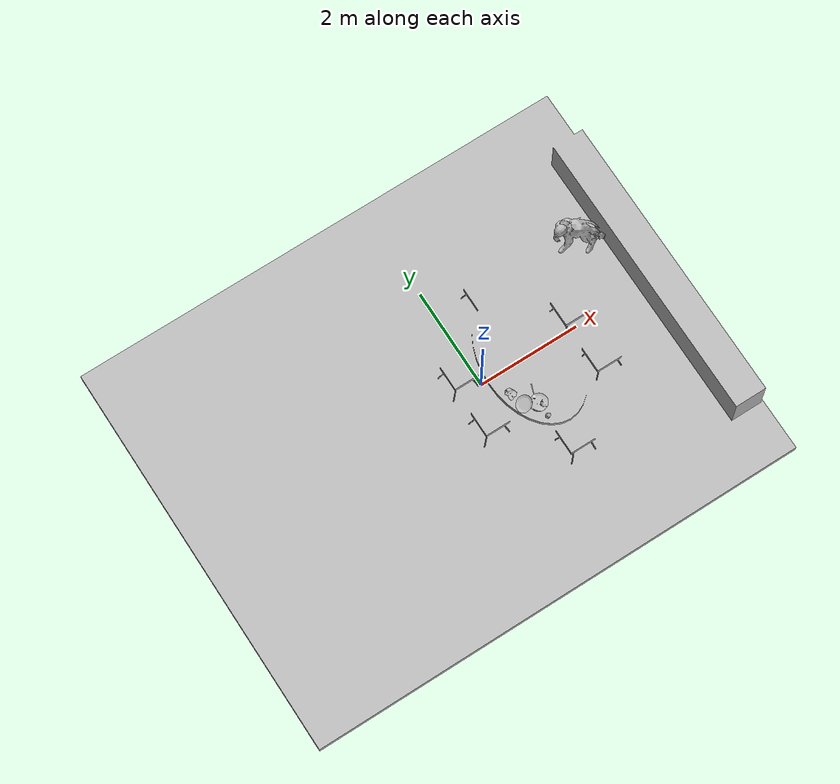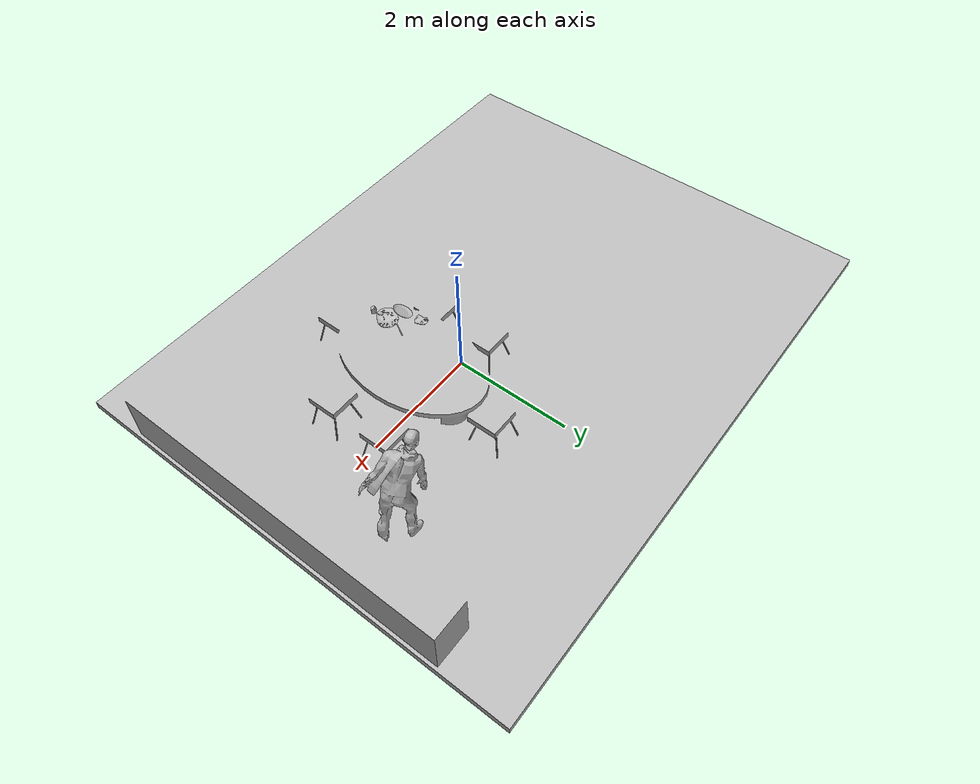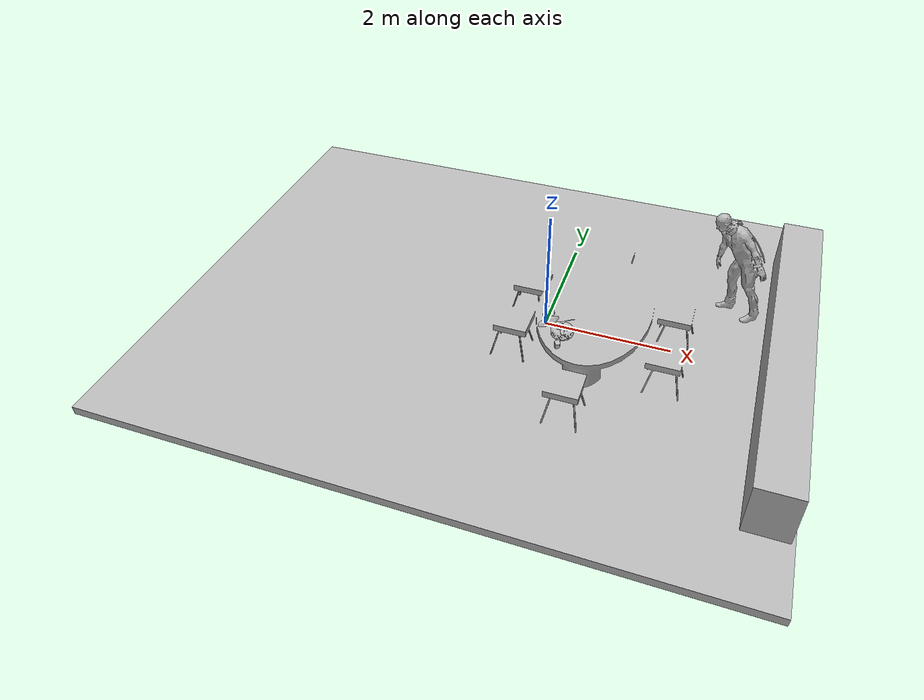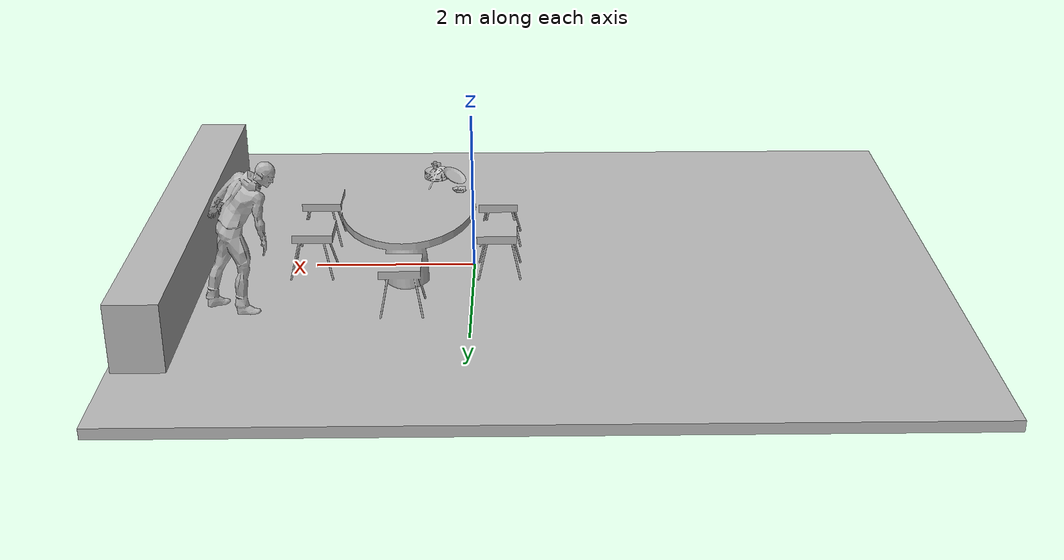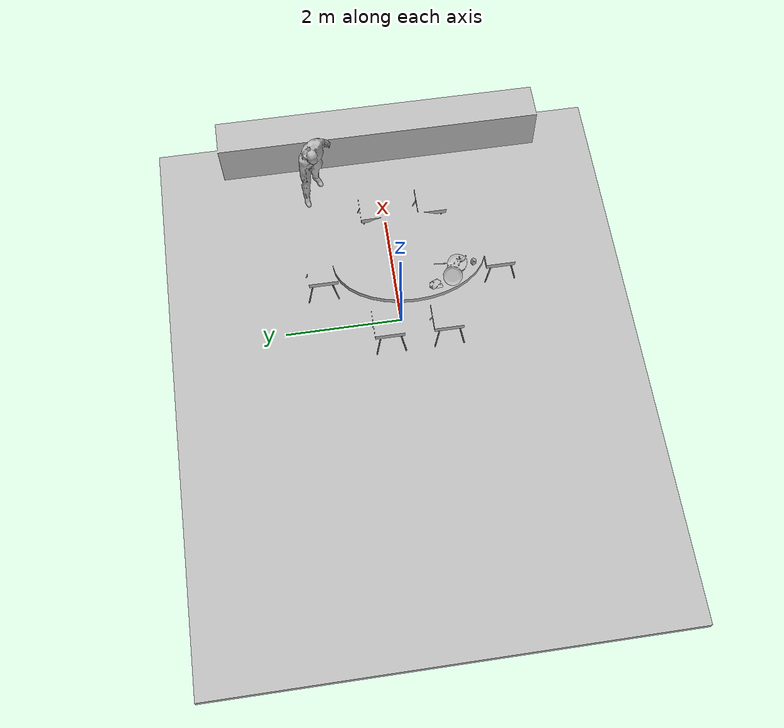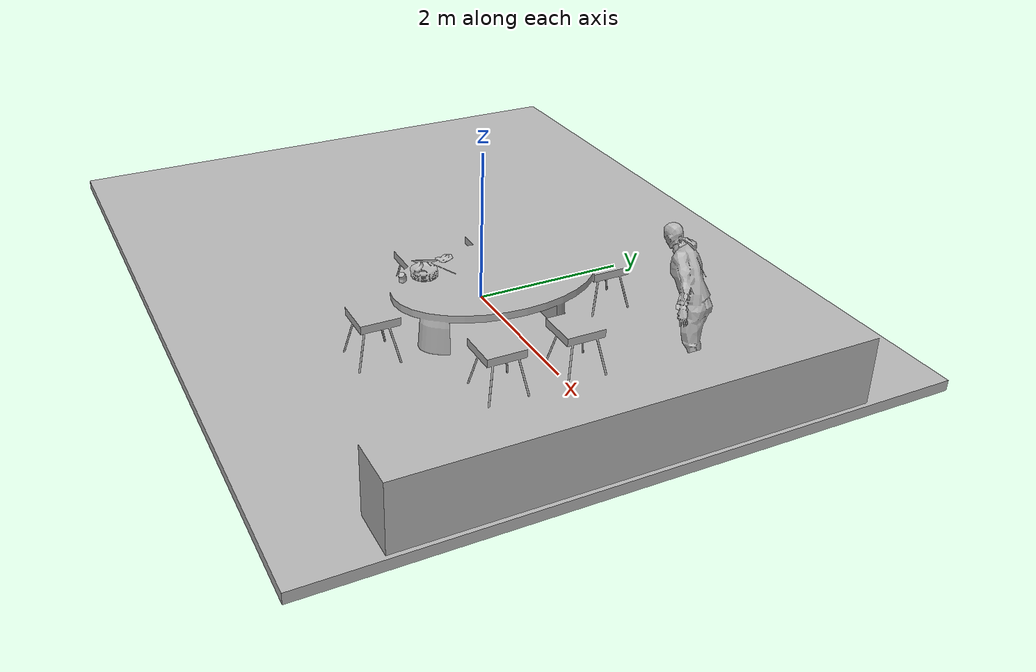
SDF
<?xml version="1.0" ?>

<sdf version="1.6">
  <world name="default">

     <scene>
      <ambient>0.8 0.8 0.8 1.0</ambient>
      <background>0 0 0</background>
      <grid>false</grid>
    </scene>

  <gui>
      <camera name="gui_camera">
        <pose>0.865529 0.125622 1.71795 0 0.364 2.518</pose>
      </camera>
    </gui>

    <include>
      <uri>model://sun</uri>
    </include>

    <include>
      <uri>model://room</uri>
      <pose>0 0 0 0 0 0</pose>
    </include>

    <include>
      <uri>model://thug</uri>
      <pose>2.850661 1.238675 0 0 0 -1.282061</pose>
    </include>

    <include>
      <uri>model://dirtydishes</uri>
      <pose>0.481000 -1.147203 0.731020 0 0 2.042881</pose>
    </include>

    <light name='user_point_light_0' type='point'>
      <pose>1.05782 2.91259 1 0 -0 0</pose>
      <diffuse>0.5 0.5 0.5 1</diffuse>
      <specular>0.1 0.1 0.1 1</specular>
      <attenuation>
        <range>20</range>
        <constant>0.05</constant>
        <linear>0.02</linear>
        <quadratic>0.001</quadratic>
      </attenuation>
      <cast_shadows>0</cast_shadows>
      <direction>0 0 -1</direction>
    </light>

    <plugin name="gazebo_ros_state" filename="libgazebo_ros_state.so">
      <ros>
        <namespace>/gazebo</namespace>
      </ros>
      <update_rate>5.0</update_rate>
    </plugin>

  </world>
</sdf>

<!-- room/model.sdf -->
<sdf version='1.6'>
  <model name='room'>
    <link name='link_1'>
         <visual name='visual'>
        <pose frame=''>0 0 0 0 -0 0</pose>
        <geometry>
          <mesh>
            <uri>model://room/meshes/room.dae</uri>
            <scale>1.0 1.0 1.0</scale>
          </mesh>
        </geometry>
        <cast_shadows>0</cast_shadows>
        <transparency>0</transparency>
      </visual>
      <collision name='collision'>
        <laser_retro>0</laser_retro>
        <max_contacts>10</max_contacts>
        <pose frame=''>0 0 0 0 -0 0</pose>
        <geometry>
          <mesh>
            <uri>model://room/meshes/room_col_full.stl</uri>
            <scale>1.0 1.0 1.0</scale>
          </mesh>
        </geometry>
     </collision>
    </link>

    <static>1</static>
    <allow_auto_disable>1</allow_auto_disable>
  </model>
</sdf>

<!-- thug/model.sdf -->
<sdf version='1.6'>
  <model name='thug'>
    <link name='link_1'>
         <visual name='visual'>
        <pose frame=''>0 0 0 0 -0 0</pose>
        <geometry>
          <mesh>
            <uri>model://thug/meshes/thug.dae</uri>
            <scale>1.0 1.0 1.0</scale>
          </mesh>
        </geometry>
        <cast_shadows>0</cast_shadows>
        <transparency>0</transparency>
      </visual>

    </link>

    <static>1</static>
    <allow_auto_disable>1</allow_auto_disable>
  </model>
</sdf>

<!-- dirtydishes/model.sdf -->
<sdf version='1.6'>
  <model name='dirtydishes'>
    <link name='link_1'>
         <visual name='visual'>
        <pose frame=''>0 0 0 0 -0 0</pose>
        <geometry>
          <mesh>
            <uri>model://dirtydishes/meshes/dirtydishes.dae</uri>
            <scale>1.0 1.0 1.0</scale>
          </mesh>
        </geometry>
        <cast_shadows>0</cast_shadows>
        <transparency>0</transparency>
      </visual>
    </link>

    <static>1</static>
    <allow_auto_disable>1</allow_auto_disable>
  </model>
</sdf>
